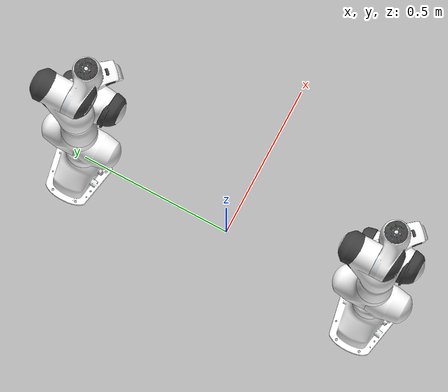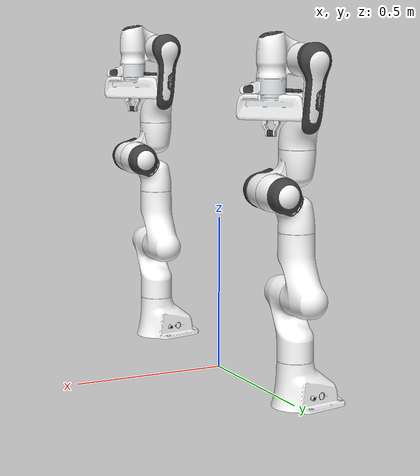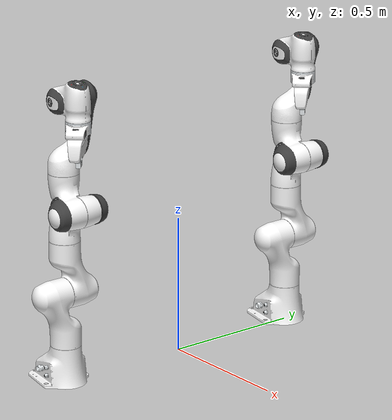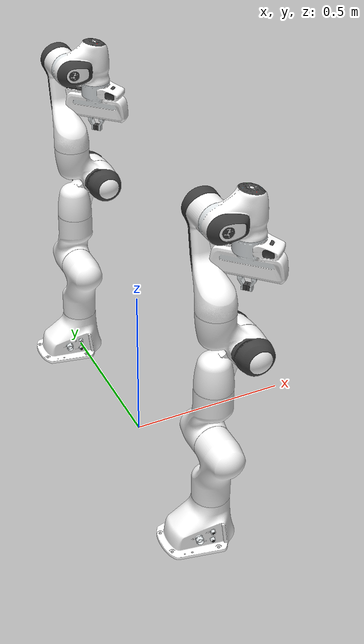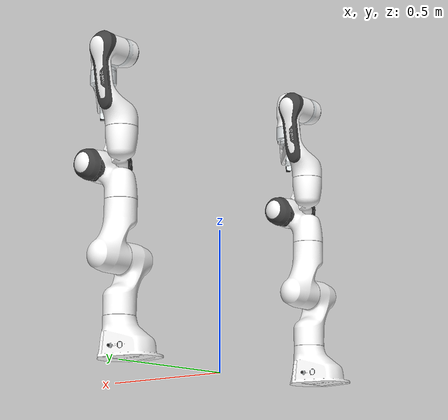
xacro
<?xml version="1.0"?>
<robot xmlns:xacro="http://www.ros.org/wiki/xacro" name="panda">

    <xacro:arg name="left_initial_positions_file"
            default="$(find dual_arm_panda_moveit_gazebo)/config/left_initial_positions.yaml"/>
    <xacro:arg name="right_initial_positions_file"
            default="$(find dual_arm_panda_moveit_gazebo)/config/right_initial_positions.yaml"/>

    <!-- Root link -->
    <link name="world"/>

    <!-- Xacro imports -->
    <xacro:include filename="panda_arm_macro.xacro" />

    <!-- Left arm -->
    <xacro:panda_arm
        name="left_panda"
        prefix="left_"
        parent="world"
        initial_positions_file="$(arg left_initial_positions_file)">
        <origin xyz="0 -0.5 0" rpy="0 0 0" />

    </xacro:panda_arm>

    <!-- Right arm -->
    <xacro:panda_arm
        name="right_panda"
        prefix="right_"
        parent="world"
        initial_positions_file="$(arg right_initial_positions_file)">
        <origin xyz="0 0.5 0" rpy="0 0 0" />
    </xacro:panda_arm>

        <gazebo reference="world">
        </gazebo>
        <gazebo>
        <plugin filename="libgazebo_ros2_control.so" name="gazebo_ros2_control">
            <robot_param>robot_description</robot_param>
            <parameters>$(arg simulation_controllers)</parameters>
        </plugin>
    </gazebo>

</robot>

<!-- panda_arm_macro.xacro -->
<robot xmlns:xacro="http://www.ros.org/wiki/xacro">

    <xacro:macro name="panda_arm" params="name prefix parent *origin initial_positions_file" >

        <!-- ros2_control -->
        <xacro:include filename="$(find dual_arm_panda_moveit_gazebo)/config/panda.ros2_control.xacro" />
        <xacro:panda_arm_ros2_control name="${name}" initial_positions_file="${initial_positions_file}" prefix="${prefix}"/>
        <xacro:arg name="simulation_controllers" default="$(find dual_arm_panda_moveit_gazebo)/config/ros2_controllers.yaml" />

        <xacro:include filename="panda_hand.ros2_control.xacro" />
        <xacro:panda_hand_ros2_control name="${name}" prefix="${prefix}"/>

        <!-- base_joint fixes base_link to the environment -->
        <joint name="${prefix}base_joint" type="fixed">
            <xacro:insert_block name="origin" />
            <parent link="${parent}" />
            <child link="${prefix}panda_link0" />
        </joint>

        <link name="${prefix}panda_link0">
            <visual>
                <geometry>
                    <mesh filename="file://$(find moveit_resources_panda_description)/meshes/visual/link0.dae" />
                </geometry>
            </visual>
            <collision>
                <geometry>
                    <mesh filename="file://$(find moveit_resources_panda_description)/meshes/collision/link0.stl" />
                </geometry>
            </collision>
            <inertial>
        <origin xyz="0 0 0" rpy="0 0 0"/>
        <mass value="2.0"/>
        <inertia ixx="0.01" ixy="0" ixz="0" iyy="0.01" iyz="0" izz="0.01"/>
    </inertial>
        </link>
        <link name="${prefix}panda_link1">
            <visual>
                <geometry>
                    <mesh filename="file://$(find moveit_resources_panda_description)/meshes/visual/link1.dae" />
                </geometry>
            </visual>
            <collision>
                <geometry>
                    <mesh filename="file://$(find moveit_resources_panda_description)/meshes/collision/link1.stl" />
                </geometry>
            </collision>
            <inertial>
        <origin xyz="0 0 0" rpy="0 0 0"/>
        <mass value="2.0"/>
        <inertia ixx="0.01" ixy="0" ixz="0" iyy="0.01" iyz="0" izz="0.01"/>
    </inertial>
        </link>
        <joint name="${prefix}panda_joint1" type="revolute">
            <safety_controller k_position="100.0" k_velocity="40.0" soft_lower_limit="-2.8973" soft_upper_limit="2.8973" />
            <origin rpy="0 0 0" xyz="0 0 0.333" />
            <parent link="${prefix}panda_link0" />
            <child link="${prefix}panda_link1" />
            <axis xyz="0 0 1" />
            <limit effort="87" lower="-2.9671" upper="2.9671" velocity="2.3925" />
        </joint>
        <link name="${prefix}panda_link2">
            <visual>
                <geometry>
                    <mesh filename="file://$(find moveit_resources_panda_description)/meshes/visual/link2.dae" />
                </geometry>
            </visual>
            <collision>
                <geometry>
                    <mesh filename="file://$(find moveit_resources_panda_description)/meshes/collision/link2.stl" />
                </geometry>
            </collision>
            <inertial>
        <origin xyz="0 0 0" rpy="0 0 0"/>
        <mass value="2.0"/>
        <inertia ixx="0.01" ixy="0" ixz="0" iyy="0.01" iyz="0" izz="0.01"/>
    </inertial>
        </link>
        <joint name="${prefix}panda_joint2" type="revolute">
            <safety_controller k_position="100.0" k_velocity="40.0" soft_lower_limit="-1.7628" soft_upper_limit="1.7628" />
            <origin rpy="-1.57079632679 0 0" xyz="0 0 0" />
            <parent link="${prefix}panda_link1" />
            <child link="${prefix}panda_link2" />
            <axis xyz="0 0 1" />
            <limit effort="87" lower="-1.8326" upper="1.8326" velocity="2.3925" />
        </joint>
        <link name="${prefix}panda_link3">
            <visual>
                <geometry>
                    <mesh filename="file://$(find moveit_resources_panda_description)/meshes/visual/link3.dae" />
                </geometry>
            </visual>
            <collision>
                <geometry>
                    <mesh filename="file://$(find moveit_resources_panda_description)/meshes/collision/link3.stl" />
                </geometry>
            </collision>
            <inertial>
        <origin xyz="0 0 0" rpy="0 0 0"/>
        <mass value="2.0"/>
        <inertia ixx="0.01" ixy="0" ixz="0" iyy="0.01" iyz="0" izz="0.01"/>
    </inertial>
        </link>
        <joint name="${prefix}panda_joint3" type="revolute">
            <safety_controller k_position="100.0" k_velocity="40.0" soft_lower_limit="-2.8973" soft_upper_limit="2.8973" />
            <origin rpy="1.57079632679 0 0" xyz="0 -0.316 0" />
            <parent link="${prefix}panda_link2" />
            <child link="${prefix}panda_link3" />
            <axis xyz="0 0 1" />
            <limit effort="87" lower="-2.9671" upper="2.9671" velocity="2.3925" />
        </joint>
        <link name="${prefix}panda_link4">
            <visual>
                <geometry>
                    <mesh filename="file://$(find moveit_resources_panda_description)/meshes/visual/link4.dae" />
                </geometry>
            </visual>
            <collision>
                <geometry>
                    <mesh filename="file://$(find moveit_resources_panda_description)/meshes/collision/link4.stl" />
                </geometry>
            </collision>
            <inertial>
        <origin xyz="0 0 0" rpy="0 0 0"/>
        <mass value="2.0"/>
        <inertia ixx="0.01" ixy="0" ixz="0" iyy="0.01" iyz="0" izz="0.01"/>
    </inertial>
        </link>
        <joint name="${prefix}panda_joint4" type="revolute">
            <safety_controller k_position="100.0" k_velocity="40.0" soft_lower_limit="-3.0718" soft_upper_limit="0.0175" />
            <origin rpy="1.57079632679 0 0" xyz="0.0825 0 0" />
            <parent link="${prefix}panda_link3" />
            <child link="${prefix}panda_link4" />
            <axis xyz="0 0 1" />
            <limit effort="87" lower="-3.1416" upper="0.0873" velocity="2.3925" />
        </joint>
        <link name="${prefix}panda_link5">
            <visual>
                <geometry>
                    <mesh filename="file://$(find moveit_resources_panda_description)/meshes/visual/link5.dae" />
                </geometry>
            </visual>
            <collision>
                <geometry>
                    <mesh filename="file://$(find moveit_resources_panda_description)/meshes/collision/link5.stl" />
                </geometry>
            </collision>
            <inertial>
        <origin xyz="0 0 0" rpy="0 0 0"/>
        <mass value="2.0"/>
        <inertia ixx="0.01" ixy="0" ixz="0" iyy="0.01" iyz="0" izz="0.01"/>
    </inertial>
        </link>
        <joint name="${prefix}panda_joint5" type="revolute">
            <safety_controller k_position="100.0" k_velocity="40.0" soft_lower_limit="-2.8973" soft_upper_limit="2.8973" />
            <origin rpy="-1.57079632679 0 0" xyz="-0.0825 0.384 0" />
            <parent link="${prefix}panda_link4" />
            <child link="${prefix}panda_link5" />
            <axis xyz="0 0 1" />
            <limit effort="12" lower="-2.9671" upper="2.9671" velocity="2.8710" />
        </joint>
        <link name="${prefix}panda_link6">
            <visual>
                <geometry>
                    <mesh filename="file://$(find moveit_resources_panda_description)/meshes/visual/link6.dae" />
                </geometry>
            </visual>
            <collision>
                <geometry>
                    <mesh filename="file://$(find moveit_resources_panda_description)/meshes/collision/link6.stl" />
                </geometry>
            </collision>
            <inertial>
        <origin xyz="0 0 0" rpy="0 0 0"/>
        <mass value="2.0"/>
        <inertia ixx="0.01" ixy="0" ixz="0" iyy="0.01" iyz="0" izz="0.01"/>
    </inertial>
        </link>
        <joint name="${prefix}panda_joint6" type="revolute">
            <safety_controller k_position="100.0" k_velocity="40.0" soft_lower_limit="-0.0175" soft_upper_limit="3.7525" />
            <origin rpy="1.57079632679 0 0" xyz="0 0 0" />
            <parent link="${prefix}panda_link5" />
            <child link="${prefix}panda_link6" />
            <axis xyz="0 0 1" />
            <limit effort="12" lower="-0.0873" upper="3.8223" velocity="2.8710" />
        </joint>
        <link name="${prefix}panda_link7">
            <visual>
                <geometry>
                    <mesh filename="file://$(find moveit_resources_panda_description)/meshes/visual/link7.dae" />
                </geometry>
            </visual>
            <collision>
                <geometry>
                    <mesh filename="file://$(find moveit_resources_panda_description)/meshes/collision/link7.stl" />
                </geometry>
            </collision>
            <inertial>
        <origin xyz="0 0 0" rpy="0 0 0"/>
        <mass value="2.0"/>
        <inertia ixx="0.01" ixy="0" ixz="0" iyy="0.01" iyz="0" izz="0.01"/>
    </inertial>
        </link>
        <joint name="${prefix}panda_joint7" type="revolute">
            <safety_controller k_position="100.0" k_velocity="40.0" soft_lower_limit="-2.8973" soft_upper_limit="2.8973" />
            <origin rpy="1.57079632679 0 0" xyz="0.088 0 0" />
            <parent link="${prefix}panda_link6" />
            <child link="${prefix}panda_link7" />
            <axis xyz="0 0 1" />
            <limit effort="12" lower="-2.9671" upper="2.9671" velocity="2.8710" />
        </joint>
        <link name="${prefix}panda_link8" />
        <joint name="${prefix}panda_joint8" type="fixed">
            <origin rpy="0 0 0" xyz="0 0 0.107" />
            <parent link="${prefix}panda_link7" />
            <child link="${prefix}panda_link8" />
            <axis xyz="0 0 0" />
        </joint>
        <joint name="${prefix}panda_hand_joint" type="fixed">
            <parent link="${prefix}panda_link8" />
            <child link="${prefix}panda_hand" />
            <origin rpy="0 0 -0.785398163397" xyz="0 0 0" />
        </joint>
        <link name="${prefix}panda_hand">
            <visual>
                <geometry>
                    <mesh filename="file://$(find moveit_resources_panda_description)/meshes/visual/hand.dae" />
                </geometry>
            </visual>
            <collision>
                <geometry>
                    <mesh filename="file://$(find moveit_resources_panda_description)/meshes/collision/hand.stl" />
                </geometry>
            </collision>
            <inertial>
        <origin xyz="0 0 0" rpy="0 0 0"/>
        <mass value="2.0"/>
        <inertia ixx="0.01" ixy="0" ixz="0" iyy="0.01" iyz="0" izz="0.01"/>
    </inertial>
        </link>
        <link name="${prefix}panda_leftfinger">
            <visual>
                <geometry>
                    <mesh filename="file://$(find moveit_resources_panda_description)/meshes/visual/finger.dae" />
                </geometry>
            </visual>
            <collision>
                <geometry>
                    <mesh filename="file://$(find moveit_resources_panda_description)/meshes/collision/finger.stl" />
                </geometry>
            </collision>
            <inertial>
        <origin xyz="0 0 0" rpy="0 0 0"/>
        <mass value="2.0"/>
        <inertia ixx="0.01" ixy="0" ixz="0" iyy="0.01" iyz="0" izz="0.01"/>
    </inertial>
        </link>
        <link name="${prefix}panda_rightfinger">
            <visual>
                <origin rpy="0 0 3.14159265359" xyz="0 0 0" />
                <geometry>
                    <mesh filename="file://$(find moveit_resources_panda_description)/meshes/visual/finger.dae" />
                </geometry>
            </visual>
            <collision>
                <origin rpy="0 0 3.14159265359" xyz="0 0 0" />
                <geometry>
                    <mesh filename="file://$(find moveit_resources_panda_description)/meshes/collision/finger.stl" />
                </geometry>
            </collision>
            <inertial>
        <origin xyz="0 0 0" rpy="0 0 0"/>
        <mass value="2.0"/>
        <inertia ixx="0.01" ixy="0" ixz="0" iyy="0.01" iyz="0" izz="0.01"/>
    </inertial>
        </link>
        <joint name="${prefix}panda_finger_joint1" type="prismatic">
            <parent link="${prefix}panda_hand" />
            <child link="${prefix}panda_leftfinger" />
            <origin rpy="0 0 0" xyz="0 0 0.0584" />
            <axis xyz="0 1 0" />
            <limit effort="20" lower="0.0" upper="0.04" velocity="0.2" />
        </joint>
        <joint name="${prefix}panda_finger_joint2" type="prismatic">
            <parent link="${prefix}panda_hand" />
            <child link="${prefix}panda_rightfinger" />
            <origin rpy="0 0 0" xyz="0 0 0.0584" />
            <axis xyz="0 -1 0" />
            <limit effort="20" lower="0.0" upper="0.04" velocity="0.2" />
        </joint>

        <transmission name="${prefix}panda_joint1_trans">
        <type>transmission_interface/SimpleTransmission</type>
        <joint name="${prefix}panda_joint1">
            <hardwareInterface>hardware_interface/PositionJointInterface</hardwareInterface>
        </joint>
        <actuator name="${prefix}panda_joint1_motor">
            <hardwareInterface>hardware_interface/PositionJointInterface</hardwareInterface>
            <mechanicalReduction>1.0</mechanicalReduction>
        </actuator>
        </transmission>

        <transmission name="${prefix}panda_joint2_trans">
        <type>transmission_interface/SimpleTransmission</type>
        <joint name="${prefix}panda_joint2">
            <hardwareInterface>hardware_interface/PositionJointInterface</hardwareInterface>
        </joint>
        <actuator name="${prefix}panda_joint2_motor">
            <hardwareInterface>hardware_interface/PositionJointInterface</hardwareInterface>
            <mechanicalReduction>1.0</mechanicalReduction>
        </actuator>
        </transmission>

        <transmission name="${prefix}panda_joint3_trans">
        <type>transmission_interface/SimpleTransmission</type>
        <joint name="${prefix}panda_joint3">
            <hardwareInterface>hardware_interface/PositionJointInterface</hardwareInterface>
        </joint>
        <actuator name="${prefix}panda_joint3_motor">
            <hardwareInterface>hardware_interface/PositionJointInterface</hardwareInterface>
            <mechanicalReduction>1.0</mechanicalReduction>
        </actuator>
        </transmission>

        <transmission name="${prefix}panda_joint4_trans">
        <type>transmission_interface/SimpleTransmission</type>
        <joint name="${prefix}panda_joint4">
            <hardwareInterface>hardware_interface/PositionJointInterface</hardwareInterface>
        </joint>
        <actuator name="${prefix}panda_joint4_motor">
            <hardwareInterface>hardware_interface/PositionJointInterface</hardwareInterface>
            <mechanicalReduction>1.0</mechanicalReduction>
        </actuator>
        </transmission>

        <transmission name="${prefix}panda_joint5_trans">
        <type>transmission_interface/SimpleTransmission</type>
        <joint name="${prefix}panda_joint5">
            <hardwareInterface>hardware_interface/PositionJointInterface</hardwareInterface>
        </joint>
        <actuator name="${prefix}panda_joint5_motor">
            <hardwareInterface>hardware_interface/PositionJointInterface</hardwareInterface>
            <mechanicalReduction>1.0</mechanicalReduction>
        </actuator>
        </transmission>

        <transmission name="${prefix}panda_joint6_trans">
        <type>transmission_interface/SimpleTransmission</type>
        <joint name="${prefix}panda_joint6">
            <hardwareInterface>hardware_interface/PositionJointInterface</hardwareInterface>
        </joint>
        <actuator name="${prefix}panda_joint6_motor">
            <hardwareInterface>hardware_interface/PositionJointInterface</hardwareInterface>
            <mechanicalReduction>1.0</mechanicalReduction>
        </actuator>
        </transmission>

        <transmission name="${prefix}panda_joint7_trans">
        <type>transmission_interface/SimpleTransmission</type>
        <joint name="${prefix}panda_joint7">
            <hardwareInterface>hardware_interface/PositionJointInterface</hardwareInterface>
        </joint>
        <actuator name="${prefix}panda_joint7_motor">
            <hardwareInterface>hardware_interface/PositionJointInterface</hardwareInterface>
            <mechanicalReduction>1.0</mechanicalReduction>
        </actuator>
        </transmission>

        <!-- Gripper joints -->

        <transmission name="${prefix}panda_finger_joint1_trans">
        <type>transmission_interface/SimpleTransmission</type>
        <joint name="${prefix}panda_finger_joint1">
            <hardwareInterface>hardware_interface/PositionJointInterface</hardwareInterface>
        </joint>
        <actuator name="${prefix}panda_finger_joint1_motor">
            <hardwareInterface>hardware_interface/PositionJointInterface</hardwareInterface>
            <mechanicalReduction>1.0</mechanicalReduction>
        </actuator>
        </transmission>

        <transmission name="${prefix}panda_finger_joint2_trans">
        <type>transmission_interface/SimpleTransmission</type>
        <joint name="${prefix}panda_finger_joint2">
            <hardwareInterface>hardware_interface/PositionJointInterface</hardwareInterface>
        </joint>
        <actuator name="${prefix}panda_finger_joint2_motor">
            <hardwareInterface>hardware_interface/PositionJointInterface</hardwareInterface>
            <mechanicalReduction>1.0</mechanicalReduction>
        </actuator>
        </transmission>

    </xacro:macro>

</robot>
